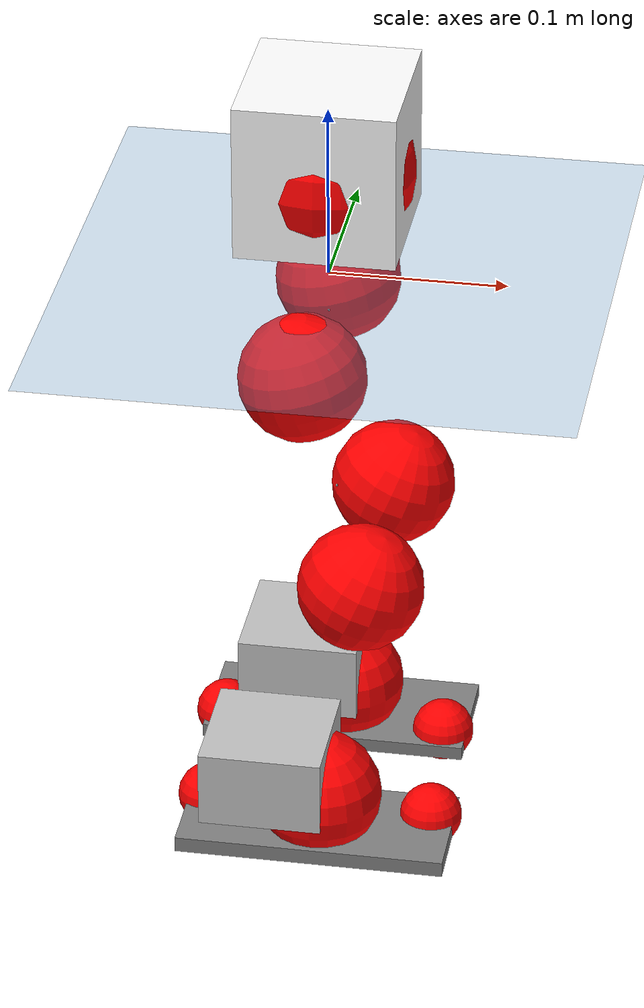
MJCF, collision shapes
<mujoco model="pi_12dof_release_v1">
  <compiler angle="radian" assetdir="assets" balanceinertia="true" inertiafromgeom="false"/>

  <option timestep="0.005" density="1.2" viscosity="2e-05"/>

  <size nkey="1"/>

  <visual>
    <quality shadowsize="8192"/>
    <map shadowclip="0.5"/>
  </visual>

  <default>
    <default class="/">
      <joint armature="0.01" damping="0.01" frictionloss="0.01"/>
      <geom contype="0" conaffinity="0" group="1" solref="-1000 -80"/>
      <site size="0.01 0.005 0.005" group="5"/>
      <general forcelimited="true" biastype="affine" gainprm="20" biasprm="0 -20 -0.5"/>
      <default class="foot">
        <geom size="0.0845 0.036 0.005" type="box" condim="6" group="4" priority="1" friction="0.9 0.2 0.2" solimp="0.015 1 0.005"/>
      </default>
      <default class="reward_collision_sphere">
        <geom group="5" rgba="1 0 0 1"/>
      </default>
    </default>
  </default>

  <asset>
    <texture type="skybox" colorspace="auto" name="//unnamed_texture_0" builtin="gradient" rgb1="0.95 0.95 0.95" rgb2="0.95 0.95 0.95" width="100" height="600"/>
    <texture type="2d" colorspace="auto" name="texplane" builtin="checker" rgb1="0.345 0.575 0.748" rgb2="0.345 0.575 0.748" markrgb="1 1 1" width="512" height="512"/>
    <material name="MatPlane" class="/" texture="texplane" texuniform="true" texrepeat="2 2" specular="0.9"/>
    <mesh name="baselink_1" class="/" file="baselink_1.STL"/>
    <mesh name="r_hip_pitch_link" class="/" file="r_hip_pitch_link.STL"/>
    <mesh name="r_hip_roll_link" class="/" file="r_hip_roll_link.STL"/>
    <mesh name="r_thigh_link" class="/" file="r_thigh_link.STL"/>
    <mesh name="r_calf_link" class="/" file="r_calf_link.STL"/>
    <mesh name="r_ankle_pitch_link" class="/" file="r_ankle_pitch_link.STL"/>
    <mesh name="r_ankle_roll_link" class="/" file="r_ankle_roll_link.STL"/>
    <mesh name="l_hip_pitch_link" class="/" file="l_hip_pitch_link.STL"/>
    <mesh name="l_hip_roll_link" class="/" file="l_hip_roll_link.STL"/>
    <mesh name="l_thigh_link" class="/" file="l_thigh_link.STL"/>
    <mesh name="l_calf_link" class="/" file="l_calf_link.STL"/>
    <mesh name="l_ankle_pitch_link" class="/" file="l_ankle_pitch_link.STL"/>
    <mesh name="l_ankle_roll_link" class="/" file="l_ankle_roll_link.STL"/>
  </asset>

  <worldbody>
    <geom name="floor" class="/" size="100 100 0.125" type="plane" group="0" material="MatPlane"/>
    <light name="toplight_shadow" class="/" pos="0 0 5" dir="0.0990148 0.0990148 -0.990148" type="directional" ambient="0.04 0.04 0.04" diffuse="0.55 0.55 0.55" specular="0.12 0.12 0.12"/>
    <light name="toplight_fill" class="/" pos="0 0 5" dir="0.0990148 0.0990148 -0.990148" type="directional" castshadow="false" ambient="0.04 0.04 0.04" diffuse="0.3 0.3 0.3" specular="0.08 0.08 0.08"/>
    <body name="trunk" pos="-0.000549674 0.000285253 -0.00243264" quat="1 -0.000103712 0.000159198 -0.000357818">
      <inertial pos="-0.000494143 -0.0033611 0.0391607" quat="0.695471 0.00974534 0.0096008 0.718424" mass="1.55606" diaginertia="0.0082947 0.00270444 0.00331576"/>
      <joint name="//unnamed_joint_0" type="free"/>
      <geom name="//unnamed_geom_1" class="/" type="mesh" density="0" rgba="1 1 1 1" mesh="baselink_1"/>
      <geom name="//unnamed_geom_2" class="/" size="0.0447748 0.0447748 0.0447748" pos="0 0 0.075798" type="box" rgba="1 1 1 1"/>
      <geom name="//unnamed_geom_3" class="reward_collision_sphere" size="0.0492523" pos="0 0 0.0663233"/>
      <site name="imu" class="/" pos="-0.0121727 0.00503131 0.0138932" size="0.00895496"/>
      <camera name="track" class="/" pos="0 -1.56093 0" quat="0.707107 0.707107 0 0" mode="trackcom"/>
      <camera name="ego_camera" class="/" pos="0.0718911 0 0.170546" quat="-0.5 -0.5 0.5 0.5"/>
      <body name="r_hip_pitch_link" pos="-0.00200211 -0.0170482 -0.0306909" quat="0.992292 -0.000461946 -0.123922 0.000109993">
        <inertial pos="0.0037343 -0.0456258 7.68465e-05" quat="-0.0103584 0.706621 -0.0239733 0.70711" mass="0.255568" diaginertia="8.45429e-05 2.81217e-05 6.30676e-05"/>
        <joint name="r_hip_pitch_joint" class="/" pos="0 0 0" axis="-0.00805016 -0.999948 -0.00624788" stiffness="0.00989779" range="-1.74566 1.19594" armature="0.00856097" damping="0.00101746" frictionloss="0.00892565"/>
        <geom name="//unnamed_geom_4" class="/" type="mesh" density="0" rgba="0.75294 0.75294 0.75294 1" mesh="r_hip_pitch_link"/>
        <geom name="//unnamed_geom_5" class="/" size="0.000447748 0.000447748 0.000447748" type="box" rgba="0.75294 0.75294 0.75294 1"/>
        <body name="r_hip_roll_link" pos="-0.00196878 -0.0424012 -0.000201854" quat="1 5.00656e-06 -0.00018651 3.55694e-05">
          <inertial pos="-6.52412e-05 -0.000488004 -0.0552838" quat="0.705833 -0.0788644 -0.0798966 0.699426" mass="0.285539" diaginertia="0.000260673 8.03589e-05 9.9188e-05"/>
          <joint name="r_hip_roll_joint" class="/" pos="0 0 0" axis="-0.999937 -0.00183796 -0.0110814" range="-0.175777 0.499618" armature="0.00859675" damping="0.0113868" frictionloss="0.0101089"/>
          <geom name="//unnamed_geom_6" class="/" type="mesh" density="0" rgba="0.75294 0.75294 0.75294 1" mesh="r_hip_roll_link"/>
          <geom name="//unnamed_geom_7" class="/" size="0.000447748 0.000447748 0.000447748" type="box" rgba="0.75294 0.75294 0.75294 1"/>
          <geom name="//unnamed_geom_8" class="reward_collision_sphere" size="0.0358198"/>
          <body name="r_thigh_link" pos="0.00259246 -0.00216517 -0.0679265" quat="0.999999 -0.00047668 0.000516529 0.00105428">
            <inertial pos="0.00099901 0.00125203 -0.0443056" quat="0.735276 0.677766 0.000897557 0.00152553" mass="0.0789947" diaginertia="9.88512e-05 2.72527e-05 4.3831e-05"/>
            <joint name="r_thigh_joint" class="/" pos="0 0 0" axis="-0.0135056 -0.00342131 -0.999903" stiffness="0.00280632" range="-0.29854 0.592361" armature="0.00884391" damping="0.00119765" frictionloss="0.0084762"/>
            <geom name="//unnamed_geom_9" class="/" type="mesh" density="0" rgba="0.75294 0.75294 0.75294 1" mesh="r_thigh_link"/>
            <geom name="//unnamed_geom_10" class="/" size="0.000447748 0.000447748 0.000447748" type="box" rgba="0.75294 0.75294 0.75294 1"/>
            <body name="r_calf_link" pos="-0.00243381 -0.00126293 -0.0653648" quat="0.947672 -2.4019e-05 0.319247 4.6254e-05">
              <inertial pos="0.0024091 -0.000833087 -0.0662007" quat="0.999974 -0.00284692 -0.00177854 0.00631946" mass="0.605246" diaginertia="0.00289157 0.00106319 0.000136973"/>
              <joint name="r_calf_joint" class="/" pos="0 0 0" axis="0.00743677 -0.999971 0.00166277" range="-1.64182 0.681687" armature="0.0079389" damping="0.019135" frictionloss="0.00837942"/>
              <geom name="//unnamed_geom_11" class="/" type="mesh" density="0" rgba="0.75294 0.75294 0.75294 1" mesh="r_calf_link"/>
              <geom name="//unnamed_geom_12" class="/" size="0.000447748 0.000447748 0.000447748" type="box" rgba="0.75294 0.75294 0.75294 1"/>
              <geom name="//unnamed_geom_13" class="reward_collision_sphere" size="0.0358198"/>
              <body name="r_ankle_pitch_link" pos="-0.000323661 0.00252103 -0.1341" quat="0.980083 1.59509e-05 -0.198588 0.000212635">
                <inertial pos="0.00459532 0.00170017 0.00034136" quat="0.00736325 0.698276 0.00152598 0.715789" mass="0.118063" diaginertia="0.000238883 6.37687e-05 8.96481e-05"/>
                <joint name="r_ankle_pitch_joint" class="/" pos="0 0 0" axis="-0.003905 -0.999992 0.000518141" range="-1.28167 0.479345" armature="0.00940683" damping="0" frictionloss="0.00892948"/>
                <geom name="//unnamed_geom_14" class="/" type="mesh" density="0" rgba="0.75294 0.75294 0.75294 1" mesh="r_ankle_pitch_link"/>
                <geom name="//unnamed_geom_15" class="/" size="0.0349243 0.0358198 0.0223874" type="box" rgba="0.75294 0.75294 0.75294 1"/>
                <body name="r_ankle_roll_link" pos="0.0765395 0.000256628 0.00082926" quat="1 -1.3146e-05 0.000147586 -7.0702e-05">
                  <inertial pos="-0.0229679 -0.000304547 -0.011025" quat="0.55576 0.432804 0.429177 0.565349" mass="0.377619" diaginertia="0.000887582 0.00028863 0.000216492"/>
                  <joint name="r_ankle_roll_joint" class="/" pos="0 0 0" axis="-0.999999 0.000837153 0.000560755" range="-0.198631 0.163282" armature="0.00898212" damping="0" frictionloss="0.0102014"/>
                  <geom name="//unnamed_geom_16" class="/" type="mesh" density="0" rgba="0.75294 0.75294 0.75294 1" mesh="r_ankle_roll_link"/>
                  <geom name="//unnamed_geom_17" class="/" type="mesh" rgba="0.75294 0.75294 0.75294 1" mesh="r_ankle_roll_link"/>
                  <geom name="right_foot" class="foot" size="0.0769842 0.033745 0.0045295" pos="-0.0488859 0 -0.0416889"/>
                  <geom name="//unnamed_geom_19" class="reward_collision_sphere" size="0.0358198" pos="-0.0479274 0 -0.0189495"/>
                  <geom name="//unnamed_geom_20" class="reward_collision_sphere" size="0.0179099" pos="0.0143782 0.0156093 -0.037899"/>
                  <geom name="//unnamed_geom_21" class="reward_collision_sphere" size="0.0179099" pos="-0.115026 0.0156093 -0.037899"/>
                  <site name="right_foot" class="foot" pos="-0.0488859 0 -0.0416889" size="0.00895496"/>
                </body>
              </body>
            </body>
          </body>
        </body>
      </body>
      <body name="l_hip_pitch_link" pos="-0.00259202 0.0188687 -0.0320189" quat="0.992213 -1.59063e-05 -0.124554 -2.25522e-05">
        <inertial pos="0.00205847 0.0446272 0.000172767" quat="-0.038289 0.707593 0.0197527 0.705305" mass="0.27894" diaginertia="0.000100173 3.03154e-05 7.1651e-05"/>
        <joint name="l_hip_pitch_joint" class="/" pos="0 0 0" axis="-0.00479025 0.999927 0.01111" range="-1.30316 1.72778" armature="0.01012" damping="0.00252483" frictionloss="0.00943221"/>
        <geom name="//unnamed_geom_22" class="/" type="mesh" density="0" rgba="0.75294 0.75294 0.75294 1" mesh="l_hip_pitch_link"/>
        <geom name="//unnamed_geom_23" class="/" size="0.000447748 0.000447748 0.000447748" type="box" rgba="0.75294 0.75294 0.75294 1"/>
        <body name="l_hip_roll_link" pos="-0.00190709 0.0417572 -0.000365432" quat="1 -0.000143132 -8.23949e-05 0.000193619">
          <inertial pos="-0.00165912 0.00259547 -0.0567433" quat="0.699266 -0.0733227 -0.0774559 0.70686" mass="0.278851" diaginertia="0.000268443 7.82242e-05 9.75285e-05"/>
          <joint name="l_hip_roll_joint" class="/" pos="0 0 0" axis="-0.999906 -0.00769418 0.0113109" range="-0.45083 0.158944" armature="0.0085246" damping="0.000424052" frictionloss="0.0077123"/>
          <geom name="//unnamed_geom_24" class="/" type="mesh" density="0" rgba="0.75294 0.75294 0.75294 1" mesh="l_hip_roll_link"/>
          <geom name="//unnamed_geom_25" class="/" size="0.000447748 0.000447748 0.000447748" type="box" rgba="0.75294 0.75294 0.75294 1"/>
          <geom name="//unnamed_geom_26" class="reward_collision_sphere" size="0.0358198"/>
          <body name="l_thigh_link" pos="-0.00216482 0.000506324 -0.0666468" quat="1 0.000149937 -0.000113522 -5.599e-05">
            <inertial pos="0.000575128 -0.00175175 -0.0450021" quat="0.667671 0.74445 0.00305175 0.000126921" mass="0.0810478" diaginertia="0.000100959 2.71162e-05 4.29126e-05"/>
            <joint name="l_thigh_joint" class="/" pos="0 0 0" axis="0.000728691 -0.000950024 -0.999999" stiffness="0.00112719" range="-0.641831 0.337689" armature="0.00956884" damping="0" frictionloss="0.00991433"/>
            <geom name="//unnamed_geom_27" class="/" type="mesh" density="0" rgba="0.75294 0.75294 0.75294 1" mesh="l_thigh_link"/>
            <geom name="//unnamed_geom_28" class="/" size="0.000447748 0.000447748 0.000447748" type="box" rgba="0.75294 0.75294 0.75294 1"/>
            <body name="l_calf_link" pos="0.00110536 -0.0022072 -0.0680584" quat="0.94778 -0.00113448 0.318922 -0.000711761">
              <inertial pos="-0.00236697 0.00178643 -0.0636454" quat="0.999992 0.00142238 -0.00189274 0.00328281" mass="0.573973" diaginertia="0.00280437 0.000996341 0.000126815"/>
              <joint name="l_calf_joint" class="/" pos="0 0 0" axis="0.00180568 0.999998 -0.00122326" range="-0.645158 1.60934" armature="0.0077455" damping="0.00769118" frictionloss="0.00771492"/>
              <geom name="//unnamed_geom_29" class="/" type="mesh" density="0" rgba="0.75294 0.75294 0.75294 1" mesh="l_calf_link"/>
              <geom name="//unnamed_geom_30" class="/" size="0.000447748 0.000447748 0.000447748" type="box" rgba="0.75294 0.75294 0.75294 1"/>
              <geom name="//unnamed_geom_31" class="reward_collision_sphere" size="0.0358198"/>
              <body name="l_ankle_pitch_link" pos="-0.000281736 4.11669e-05 -0.130259" quat="0.980071 3.72636e-05 -0.19865 -8.79866e-05">
                <inertial pos="0.0072868 5.98272e-05 -0.000960995" quat="-0.00246732 0.706846 0.0024611 0.707359" mass="0.11884" diaginertia="0.000233486 6.27052e-05 8.78341e-05"/>
                <joint name="l_ankle_pitch_joint" class="/" pos="0 0 0" axis="-0.00772161 0.999918 0.0102634" range="-0.512295 1.3077" armature="0.00902723" damping="0" frictionloss="0.00990221"/>
                <geom name="//unnamed_geom_32" class="/" type="mesh" density="0" rgba="0.75294 0.75294 0.75294 1" mesh="l_ankle_pitch_link"/>
                <geom name="//unnamed_geom_33" class="/" size="0.0349243 0.0358198 0.0223874" type="box" rgba="0.75294 0.75294 0.75294 1"/>
                <body name="l_ankle_roll_link" pos="0.0690981 0.00204677 -0.000700781" quat="1 7.60461e-05 0.000616449 0.000195086">
                  <inertial pos="-0.0242966 -0.00050377 -0.0134604" quat="0.557144 0.4413 0.437194 0.551096" mass="0.366713" diaginertia="0.000891624 0.000307527 0.000216139"/>
                  <joint name="l_ankle_roll_joint" class="/" pos="0 0 0" axis="-0.999998 0.00208756 0.000775572" range="-0.146378 0.154865" armature="0.00904577" damping="0.0055923" frictionloss="0.00779916"/>
                  <geom name="//unnamed_geom_34" class="/" type="mesh" density="0" rgba="0.75294 0.75294 0.75294 1" mesh="l_ankle_roll_link"/>
                  <geom name="//unnamed_geom_35" class="/" type="mesh" rgba="0.75294 0.75294 0.75294 1" mesh="l_ankle_roll_link"/>
                  <geom name="left_foot" class="foot" size="0.0771688 0.034934 0.00399563" pos="-0.0488859 0 -0.0416889"/>
                  <geom name="//unnamed_geom_37" class="reward_collision_sphere" size="0.0358198" pos="-0.0479274 0 -0.0189495"/>
                  <geom name="//unnamed_geom_38" class="reward_collision_sphere" size="0.0179099" pos="0.0143782 -0.0156093 -0.037899"/>
                  <geom name="//unnamed_geom_39" class="reward_collision_sphere" size="0.0179099" pos="-0.115026 -0.0156093 -0.037899"/>
                  <site name="left_foot" class="foot" pos="-0.0488859 0 -0.0416889" size="0.00895496"/>
                </body>
              </body>
            </body>
          </body>
        </body>
      </body>
    </body>
  </worldbody>

  <contact>
    <pair class="/" geom1="floor" geom2="right_foot" name="//unnamed_contact_1"/>
    <pair class="/" geom1="floor" geom2="left_foot" name="//unnamed_contact_0"/>
  </contact>

  <actuator>
    <general name="r_hip_pitch_joint" class="/" joint="r_hip_pitch_joint" forcerange="-18.9568 18.9568" gainprm="18.333" biasprm="0 -18.333 -0.478413"/>
    <general name="r_hip_roll_joint" class="/" joint="r_hip_roll_joint" forcerange="-16.8704 16.8704" gainprm="18.333" biasprm="0 -18.333 -0.478413"/>
    <general name="r_thigh_joint" class="/" joint="r_thigh_joint" forcerange="-20.7014 20.7014" gainprm="18.333" biasprm="0 -18.333 -0.478413"/>
    <general name="r_calf_joint" class="/" joint="r_calf_joint" forcerange="-18.3698 18.3698" gainprm="18.333" biasprm="0 -18.333 -0.478413"/>
    <general name="r_ankle_pitch_joint" class="/" joint="r_ankle_pitch_joint" forcerange="-16.843 16.843" gainprm="18.333" biasprm="0 -18.333 -0.478413"/>
    <general name="r_ankle_roll_joint" class="/" joint="r_ankle_roll_joint" forcerange="-18.9392 18.9392" gainprm="18.333" biasprm="0 -18.333 -0.478413"/>
    <general name="l_hip_pitch_joint" class="/" joint="l_hip_pitch_joint" forcerange="-19.4968 19.4968" gainprm="18.333" biasprm="0 -18.333 -0.478413"/>
    <general name="l_hip_roll_joint" class="/" joint="l_hip_roll_joint" forcerange="-17.5731 17.5731" gainprm="18.333" biasprm="0 -18.333 -0.478413"/>
    <general name="l_thigh_joint" class="/" joint="l_thigh_joint" forcerange="-19.3149 19.3149" gainprm="18.333" biasprm="0 -18.333 -0.478413"/>
    <general name="l_calf_joint" class="/" joint="l_calf_joint" forcerange="-17.3349 17.3349" gainprm="18.333" biasprm="0 -18.333 -0.478413"/>
    <general name="l_ankle_pitch_joint" class="/" joint="l_ankle_pitch_joint" forcerange="-19.4859 19.4859" gainprm="18.333" biasprm="0 -18.333 -0.478413"/>
    <general name="l_ankle_roll_joint" class="/" joint="l_ankle_roll_joint" forcerange="-16.8382 16.8382" gainprm="18.333" biasprm="0 -18.333 -0.478413"/>
  </actuator>

  <sensor>
    <gyro site="imu" name="imu_angular_velocity"/>
    <velocimeter site="imu" name="imu_linear_velocity"/>
    <framelinvel objtype="site" objname="left_foot" name="left_foot_global_linear_velocity"/>
    <framelinvel objtype="site" objname="right_foot" name="right_foot_global_linear_velocity"/>
  </sensor>

  <keyframe>
    <key name="home" qpos="0 0 0.291 1 0 0 0 0.4 0 0 -0.8 0.4 0 -0.4 0 0 0.8 -0.4 0"/>
  </keyframe>
</mujoco>
